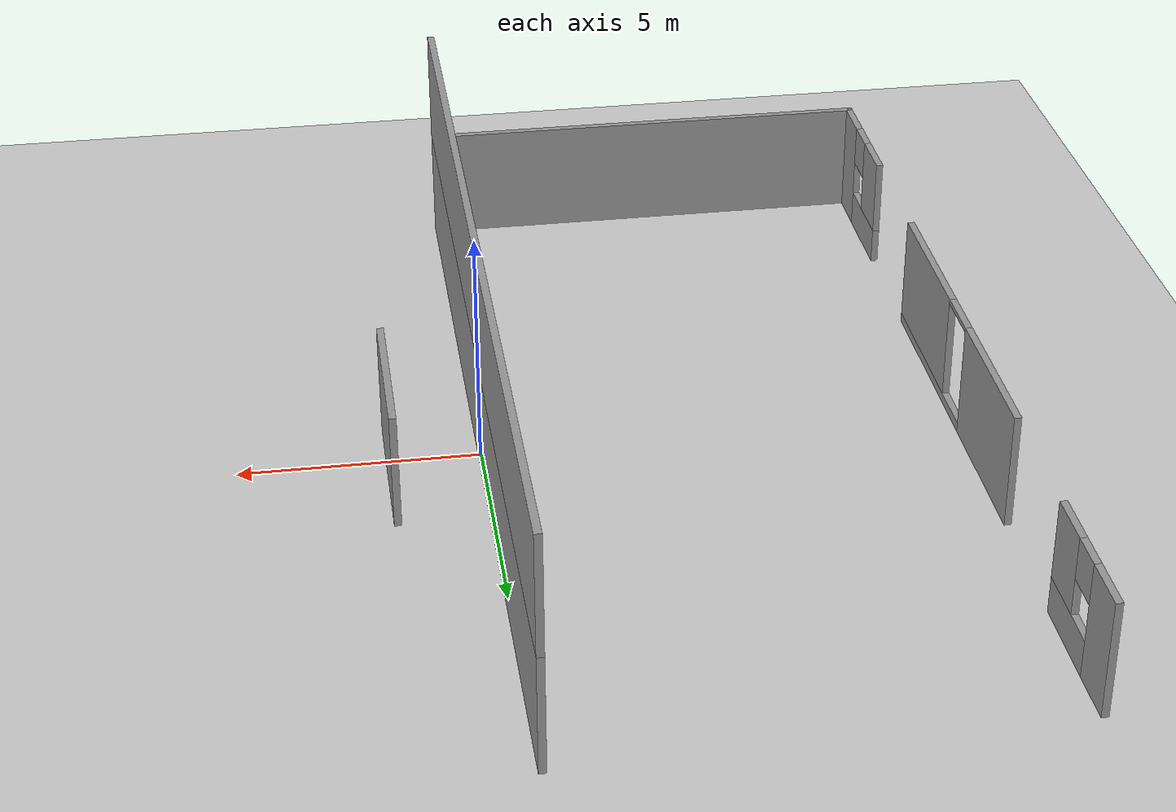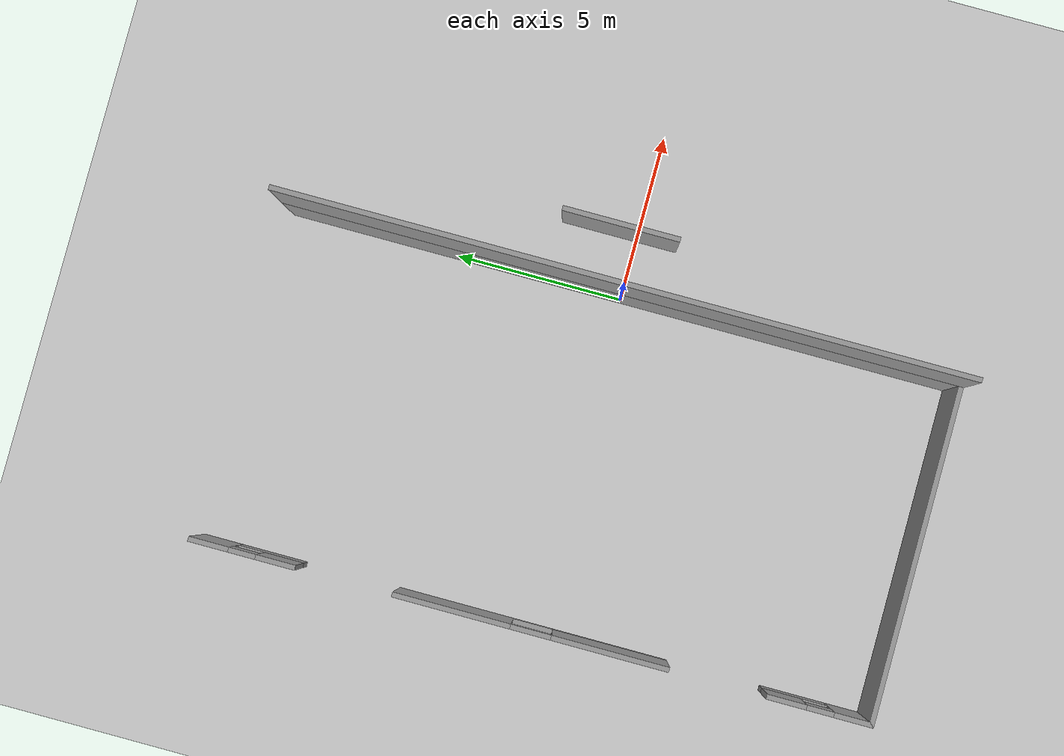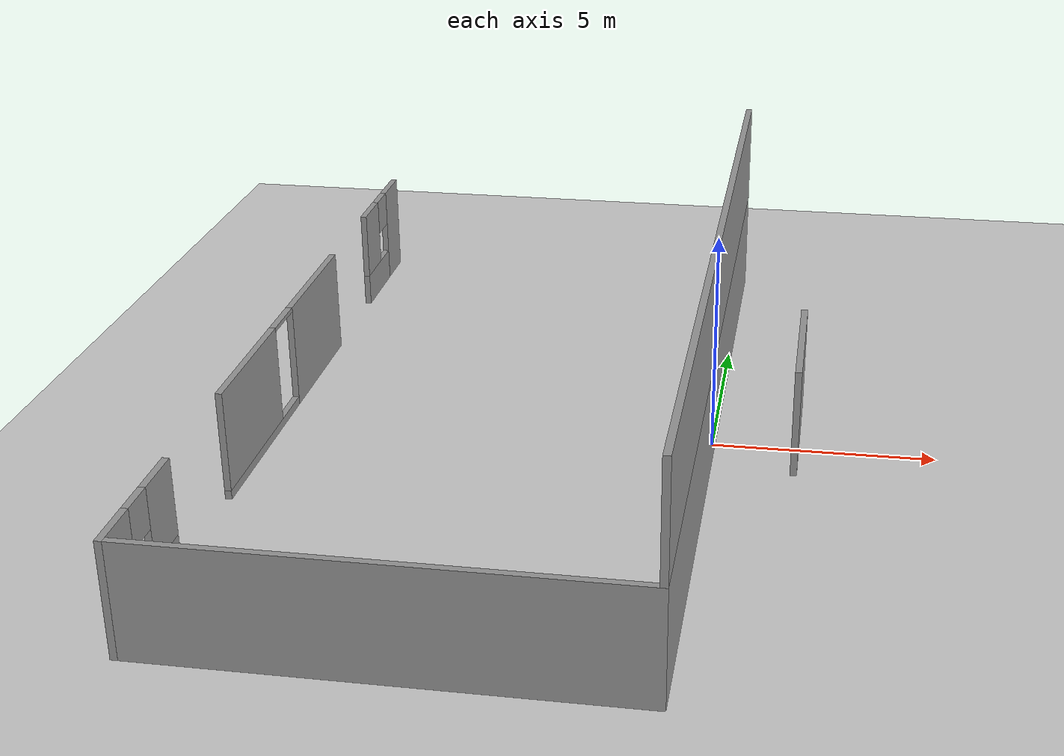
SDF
<sdf version="1.7">
 <world name="me5413_obstacle_world">
  <model name="ground_plane">
   <static>1</static>
   <link name="link">
    <collision name="collision">
     <geometry><plane><normal>0 0 1</normal><size>100 100</size></plane></geometry>
     <surface>
      <contact><collide_bitmask>65535</collide_bitmask></contact>
      <friction><ode><mu>100</mu><mu2>50</mu2></ode></friction>
     </surface>
    </collision>
    <visual name="visual">
     <cast_shadows>0</cast_shadows>
     <geometry><plane><normal>0 0 1</normal><size>100 100</size></plane></geometry>
     <material>
      <script><uri>file://media/materials/scripts/gazebo.material</uri><name>Gazebo/Grey</name></script>
     </material>
    </visual>
   </link>
  </model>
  <model name="smart_house_3_0">
   <link name="Wall_14">
    <pose>2.48447 1.48447 0 0 -0 1.5708</pose>
    <inertial>
     <inertia><ixx>1</ixx><ixy>0</ixy><ixz>0</ixz><iyy>1</iyy><iyz>0</iyz><izz>1</izz></inertia>
     <mass>1</mass>
    </inertial>
    <visual name="Wall_14_Visual">
     <pose>0 0 1.25 0 -0 0</pose>
     <geometry><box><size>20.15 0.15 2.5</size></box></geometry>
     <material>
      <script><uri>file://media/materials/scripts/gazebo.material</uri><name>Gazebo/Grey</name></script>
      <ambient>1 1 1 1</ambient>
      <shader type="pixel"/>
     </material>
     <meta><layer>0</layer></meta>
    </visual>
    <collision name="Wall_14_Collision">
     <pose>0 0 1.25 0 -0 0</pose>
     <geometry><box><size>20.15 0.15 2.5</size></box></geometry>
     <surface>
      <friction>
       <ode><mu>1</mu><mu2>1</mu2><fdir1>0 0 0</fdir1><slip1>0</slip1><slip2>0</slip2></ode>
       <torsional>
        <coefficient>1</coefficient>
        <patch_radius>0</patch_radius>
        <surface_radius>0</surface_radius>
        <use_patch_radius>1</use_patch_radius>
        <ode><slip>0</slip></ode>
       </torsional>
      </friction>
      <bounce><restitution_coefficient>0</restitution_coefficient><threshold>1e+06</threshold></bounce>
      <contact>
       <collide_without_contact>0</collide_without_contact>
       <collide_without_contact_bitmask>1</collide_without_contact_bitmask>
       <collide_bitmask>1</collide_bitmask>
       <ode>
        <soft_cfm>0</soft_cfm>
        <soft_erp>0.2</soft_erp>
        <kp>1e+13</kp>
        <kd>1</kd>
        <max_vel>0.01</max_vel>
        <min_depth>0</min_depth>
       </ode>
       <bullet>
        <split_impulse>1</split_impulse>
        <split_impulse_penetration_threshold>-0.01</split_impulse_penetration_threshold>
        <soft_cfm>0</soft_cfm>
        <soft_erp>0.2</soft_erp>
        <kp>1e+13</kp>
        <kd>1</kd>
       </bullet>
      </contact>
     </surface>
    </collision>
   </link>
   <link name="Wall_234">
    <pose>2.48447 1.48447 2.5 0 -0 1.5708</pose>
    <inertial>
     <inertia><ixx>1</ixx><ixy>0</ixy><ixz>0</ixz><iyy>1</iyy><iyz>0</iyz><izz>1</izz></inertia>
     <mass>1</mass>
    </inertial>
    <visual name="Wall_234_Visual">
     <pose>0 0 1.25 0 -0 0</pose>
     <geometry><box><size>20.15 0.15 2.5</size></box></geometry>
     <material>
      <script><uri>file://media/materials/scripts/gazebo.material</uri><name>Gazebo/Grey</name></script>
      <ambient>1 1 1 1</ambient>
      <shader type="pixel"/>
     </material>
     <meta><layer>2</layer></meta>
    </visual>
    <collision name="Wall_234_Collision">
     <pose>0 0 1.25 0 -0 0</pose>
     <geometry><box><size>20.15 0.15 2.5</size></box></geometry>
     <surface>
      <friction>
       <ode><mu>1</mu><mu2>1</mu2><fdir1>0 0 0</fdir1><slip1>0</slip1><slip2>0</slip2></ode>
       <torsional>
        <coefficient>1</coefficient>
        <patch_radius>0</patch_radius>
        <surface_radius>0</surface_radius>
        <use_patch_radius>1</use_patch_radius>
        <ode><slip>0</slip></ode>
       </torsional>
      </friction>
      <bounce><restitution_coefficient>0</restitution_coefficient><threshold>1e+06</threshold></bounce>
      <contact>
       <collide_without_contact>0</collide_without_contact>
       <collide_without_contact_bitmask>1</collide_without_contact_bitmask>
       <collide_bitmask>1</collide_bitmask>
       <ode>
        <soft_cfm>0</soft_cfm>
        <soft_erp>0.2</soft_erp>
        <kp>1e+13</kp>
        <kd>1</kd>
        <max_vel>0.01</max_vel>
        <min_depth>0</min_depth>
       </ode>
       <bullet>
        <split_impulse>1</split_impulse>
        <split_impulse_penetration_threshold>-0.01</split_impulse_penetration_threshold>
        <soft_cfm>0</soft_cfm>
        <soft_erp>0.2</soft_erp>
        <kp>1e+13</kp>
        <kd>1</kd>
       </bullet>
      </contact>
     </surface>
    </collision>
   </link>
   <link name="Wall_42">
    <pose>-2.51553 -8.51553 0 0 -0 3.14159</pose>
    <inertial>
     <inertia><ixx>1</ixx><ixy>0</ixy><ixz>0</ixz><iyy>1</iyy><iyz>0</iyz><izz>1</izz></inertia>
     <mass>1</mass>
    </inertial>
    <visual name="Wall_42_Visual">
     <pose>0 0 1.25 0 -0 0</pose>
     <geometry><box><size>10.15 0.15 2.5</size></box></geometry>
     <material>
      <script><uri>file://media/materials/scripts/gazebo.material</uri><name>Gazebo/Grey</name></script>
      <ambient>1 1 1 1</ambient>
      <shader type="pixel"/>
     </material>
     <meta><layer>0</layer></meta>
    </visual>
    <collision name="Wall_42_Collision">
     <pose>0 0 1.25 0 -0 0</pose>
     <geometry><box><size>10.15 0.15 2.5</size></box></geometry>
     <surface>
      <friction>
       <ode><mu>1</mu><mu2>1</mu2><fdir1>0 0 0</fdir1><slip1>0</slip1><slip2>0</slip2></ode>
       <torsional>
        <coefficient>1</coefficient>
        <patch_radius>0</patch_radius>
        <surface_radius>0</surface_radius>
        <use_patch_radius>1</use_patch_radius>
        <ode><slip>0</slip></ode>
       </torsional>
      </friction>
      <bounce><restitution_coefficient>0</restitution_coefficient><threshold>1e+06</threshold></bounce>
      <contact>
       <collide_without_contact>0</collide_without_contact>
       <collide_without_contact_bitmask>1</collide_without_contact_bitmask>
       <collide_bitmask>1</collide_bitmask>
       <ode>
        <soft_cfm>0</soft_cfm>
        <soft_erp>0.2</soft_erp>
        <kp>1e+13</kp>
        <kd>1</kd>
        <max_vel>0.01</max_vel>
        <min_depth>0</min_depth>
       </ode>
       <bullet>
        <split_impulse>1</split_impulse>
        <split_impulse_penetration_threshold>-0.01</split_impulse_penetration_threshold>
        <soft_cfm>0</soft_cfm>
        <soft_erp>0.2</soft_erp>
        <kp>1e+13</kp>
        <kd>1</kd>
       </bullet>
      </contact>
     </surface>
    </collision>
   </link>
   <link name="Wall_48">
    <pose>-7.51553 -7.01553 0 0 -0 1.5708</pose>
    <inertial>
     <inertia><ixx>1</ixx><ixy>0</ixy><ixz>0</ixz><iyy>1</iyy><iyz>0</iyz><izz>1</izz></inertia>
     <mass>1</mass>
    </inertial>
    <visual name="Wall_48_Visual_3">
     <pose>-0 0 2.05 0 -0 0</pose>
     <geometry><box><size>0.8 0.15 0.9</size></box></geometry>
     <material>
      <script><uri>file://media/materials/scripts/gazebo.material</uri><name>Gazebo/Grey</name></script>
      <ambient>1 1 1 1</ambient>
      <shader type="pixel"/>
     </material>
     <meta><layer>0</layer></meta>
    </visual>
    <visual name="Wall_48_Visual_0">
     <pose>-0.9875 0 1.25 0 -0 0</pose>
     <geometry><box><size>1.175 0.15 2.5</size></box></geometry>
     <material>
      <script><uri>file://media/materials/scripts/gazebo.material</uri><name>Gazebo/Grey</name></script>
      <ambient>1 1 1 1</ambient>
      <shader type="pixel"/>
     </material>
     <meta><layer>0</layer></meta>
    </visual>
    <visual name="Wall_48_Visual_2">
     <pose>0.9875 0 1.65 0 -0 0</pose>
     <geometry><box><size>1.175 0.15 1.7</size></box></geometry>
     <material>
      <script><uri>file://media/materials/scripts/gazebo.material</uri><name>Gazebo/Grey</name></script>
      <ambient>1 1 1 1</ambient>
      <shader type="pixel"/>
     </material>
     <meta><layer>0</layer></meta>
    </visual>
    <visual name="Wall_48_Visual_1">
     <pose>0.5875 0 0.4 0 -0 0</pose>
     <geometry><box><size>1.975 0.15 0.8</size></box></geometry>
     <material>
      <script><uri>file://media/materials/scripts/gazebo.material</uri><name>Gazebo/Grey</name></script>
      <ambient>1 1 1 1</ambient>
      <shader type="pixel"/>
     </material>
     <meta><layer>0</layer></meta>
    </visual>
    <collision name="Wall_48_Collision_0">
     <pose>-0.9875 0 1.25 0 -0 0</pose>
     <geometry><box><size>1.175 0.15 2.5</size></box></geometry>
     <surface>
      <friction>
       <ode><mu>1</mu><mu2>1</mu2><fdir1>0 0 0</fdir1><slip1>0</slip1><slip2>0</slip2></ode>
       <torsional>
        <coefficient>1</coefficient>
        <patch_radius>0</patch_radius>
        <surface_radius>0</surface_radius>
        <use_patch_radius>1</use_patch_radius>
        <ode><slip>0</slip></ode>
       </torsional>
      </friction>
      <bounce><restitution_coefficient>0</restitution_coefficient><threshold>1e+06</threshold></bounce>
      <contact>
       <collide_without_contact>0</collide_without_contact>
       <collide_without_contact_bitmask>1</collide_without_contact_bitmask>
       <collide_bitmask>1</collide_bitmask>
       <ode>
        <soft_cfm>0</soft_cfm>
        <soft_erp>0.2</soft_erp>
        <kp>1e+13</kp>
        <kd>1</kd>
        <max_vel>0.01</max_vel>
        <min_depth>0</min_depth>
       </ode>
       <bullet>
        <split_impulse>1</split_impulse>
        <split_impulse_penetration_threshold>-0.01</split_impulse_penetration_threshold>
        <soft_cfm>0</soft_cfm>
        <soft_erp>0.2</soft_erp>
        <kp>1e+13</kp>
        <kd>1</kd>
       </bullet>
      </contact>
     </surface>
    </collision>
    <collision name="Wall_48_Collision_3">
     <pose>0 0 2.05 0 -0 0</pose>
     <geometry><box><size>0.8 0.15 0.9</size></box></geometry>
     <surface>
      <friction>
       <ode><mu>1</mu><mu2>1</mu2><fdir1>0 0 0</fdir1><slip1>0</slip1><slip2>0</slip2></ode>
       <torsional>
        <coefficient>1</coefficient>
        <patch_radius>0</patch_radius>
        <surface_radius>0</surface_radius>
        <use_patch_radius>1</use_patch_radius>
        <ode><slip>0</slip></ode>
       </torsional>
      </friction>
      <bounce><restitution_coefficient>0</restitution_coefficient><threshold>1e+06</threshold></bounce>
      <contact>
       <collide_without_contact>0</collide_without_contact>
       <collide_without_contact_bitmask>1</collide_without_contact_bitmask>
       <collide_bitmask>1</collide_bitmask>
       <ode>
        <soft_cfm>0</soft_cfm>
        <soft_erp>0.2</soft_erp>
        <kp>1e+13</kp>
        <kd>1</kd>
        <max_vel>0.01</max_vel>
        <min_depth>0</min_depth>
       </ode>
       <bullet>
        <split_impulse>1</split_impulse>
        <split_impulse_penetration_threshold>-0.01</split_impulse_penetration_threshold>
        <soft_cfm>0</soft_cfm>
        <soft_erp>0.2</soft_erp>
        <kp>1e+13</kp>
        <kd>1</kd>
       </bullet>
      </contact>
     </surface>
    </collision>
    <collision name="Wall_48_Collision_2">
     <pose>0.9875 0 1.65 0 -0 0</pose>
     <geometry><box><size>1.175 0.15 1.7</size></box></geometry>
     <surface>
      <friction>
       <ode><mu>1</mu><mu2>1</mu2><fdir1>0 0 0</fdir1><slip1>0</slip1><slip2>0</slip2></ode>
       <torsional>
        <coefficient>1</coefficient>
        <patch_radius>0</patch_radius>
        <surface_radius>0</surface_radius>
        <use_patch_radius>1</use_patch_radius>
        <ode><slip>0</slip></ode>
       </torsional>
      </friction>
      <bounce><restitution_coefficient>0</restitution_coefficient><threshold>1e+06</threshold></bounce>
      <contact>
       <collide_without_contact>0</collide_without_contact>
       <collide_without_contact_bitmask>1</collide_without_contact_bitmask>
       <collide_bitmask>1</collide_bitmask>
       <ode>
        <soft_cfm>0</soft_cfm>
        <soft_erp>0.2</soft_erp>
        <kp>1e+13</kp>
        <kd>1</kd>
        <max_vel>0.01</max_vel>
        <min_depth>0</min_depth>
       </ode>
       <bullet>
        <split_impulse>1</split_impulse>
        <split_impulse_penetration_threshold>-0.01</split_impulse_penetration_threshold>
        <soft_cfm>0</soft_cfm>
        <soft_erp>0.2</soft_erp>
        <kp>1e+13</kp>
        <kd>1</kd>
       </bullet>
      </contact>
     </surface>
    </collision>
    <collision name="Wall_48_Collision_1">
     <pose>0.5875 0 0.4 0 -0 0</pose>
     <geometry><box><size>1.975 0.15 0.8</size></box></geometry>
     <surface>
      <friction>
       <ode><mu>1</mu><mu2>1</mu2><fdir1>0 0 0</fdir1><slip1>0</slip1><slip2>0</slip2></ode>
       <torsional>
        <coefficient>1</coefficient>
        <patch_radius>0</patch_radius>
        <surface_radius>0</surface_radius>
        <use_patch_radius>1</use_patch_radius>
        <ode><slip>0</slip></ode>
       </torsional>
      </friction>
      <bounce><restitution_coefficient>0</restitution_coefficient><threshold>1e+06</threshold></bounce>
      <contact>
       <collide_without_contact>0</collide_without_contact>
       <collide_without_contact_bitmask>1</collide_without_contact_bitmask>
       <collide_bitmask>1</collide_bitmask>
       <ode>
        <soft_cfm>0</soft_cfm>
        <soft_erp>0.2</soft_erp>
        <kp>1e+13</kp>
        <kd>1</kd>
        <max_vel>0.01</max_vel>
        <min_depth>0</min_depth>
       </ode>
       <bullet>
        <split_impulse>1</split_impulse>
        <split_impulse_penetration_threshold>-0.01</split_impulse_penetration_threshold>
        <soft_cfm>0</soft_cfm>
        <soft_erp>0.2</soft_erp>
        <kp>1e+13</kp>
        <kd>1</kd>
       </bullet>
      </contact>
     </surface>
    </collision>
   </link>
   <link name="Wall_50">
    <pose>-7.51553 9.98447 0 0 0 -1.5708</pose>
    <inertial>
     <inertia><ixx>1</ixx><ixy>0</ixy><ixz>0</ixz><iyy>1</iyy><iyz>0</iyz><izz>1</izz></inertia>
     <mass>1</mass>
    </inertial>
    <visual name="Wall_50_Visual_3">
     <pose>-0 0 2.05 0 -0 0</pose>
     <geometry><box><size>0.8 0.15 0.9</size></box></geometry>
     <material>
      <script><uri>file://media/materials/scripts/gazebo.material</uri><name>Gazebo/Grey</name></script>
      <ambient>1 1 1 1</ambient>
      <shader type="pixel"/>
     </material>
     <meta><layer>0</layer></meta>
    </visual>
    <visual name="Wall_50_Visual_2">
     <pose>0.9875 0 1.65 0 -0 0</pose>
     <geometry><box><size>1.175 0.15 1.7</size></box></geometry>
     <material>
      <script><uri>file://media/materials/scripts/gazebo.material</uri><name>Gazebo/Grey</name></script>
      <ambient>1 1 1 1</ambient>
      <shader type="pixel"/>
     </material>
     <meta><layer>0</layer></meta>
    </visual>
    <visual name="Wall_50_Visual_1">
     <pose>0.5875 0 0.4 0 -0 0</pose>
     <geometry><box><size>1.975 0.15 0.8</size></box></geometry>
     <material>
      <script><uri>file://media/materials/scripts/gazebo.material</uri><name>Gazebo/Grey</name></script>
      <ambient>1 1 1 1</ambient>
      <shader type="pixel"/>
     </material>
     <meta><layer>0</layer></meta>
    </visual>
    <visual name="Wall_50_Visual_0">
     <pose>-0.9875 0 1.25 0 -0 0</pose>
     <geometry><box><size>1.175 0.15 2.5</size></box></geometry>
     <material>
      <script><uri>file://media/materials/scripts/gazebo.material</uri><name>Gazebo/Grey</name></script>
      <ambient>1 1 1 1</ambient>
      <shader type="pixel"/>
     </material>
     <meta><layer>0</layer></meta>
    </visual>
    <collision name="Wall_50_Collision_2">
     <pose>0.9875 0 1.65 0 -0 0</pose>
     <geometry><box><size>1.175 0.15 1.7</size></box></geometry>
     <surface>
      <friction>
       <ode><mu>1</mu><mu2>1</mu2><fdir1>0 0 0</fdir1><slip1>0</slip1><slip2>0</slip2></ode>
       <torsional>
        <coefficient>1</coefficient>
        <patch_radius>0</patch_radius>
        <surface_radius>0</surface_radius>
        <use_patch_radius>1</use_patch_radius>
        <ode><slip>0</slip></ode>
       </torsional>
      </friction>
      <bounce><restitution_coefficient>0</restitution_coefficient><threshold>1e+06</threshold></bounce>
      <contact>
       <collide_without_contact>0</collide_without_contact>
       <collide_without_contact_bitmask>1</collide_without_contact_bitmask>
       <collide_bitmask>1</collide_bitmask>
       <ode>
        <soft_cfm>0</soft_cfm>
        <soft_erp>0.2</soft_erp>
        <kp>1e+13</kp>
        <kd>1</kd>
        <max_vel>0.01</max_vel>
        <min_depth>0</min_depth>
       </ode>
       <bullet>
        <split_impulse>1</split_impulse>
        <split_impulse_penetration_threshold>-0.01</split_impulse_penetration_threshold>
        <soft_cfm>0</soft_cfm>
        <soft_erp>0.2</soft_erp>
        <kp>1e+13</kp>
        <kd>1</kd>
       </bullet>
      </contact>
     </surface>
    </collision>
    <collision name="Wall_50_Collision_3">
     <pose>0 0 2.05 0 -0 0</pose>
     <geometry><box><size>0.8 0.15 0.9</size></box></geometry>
     <surface>
      <friction>
       <ode><mu>1</mu><mu2>1</mu2><fdir1>0 0 0</fdir1><slip1>0</slip1><slip2>0</slip2></ode>
       <torsional>
        <coefficient>1</coefficient>
        <patch_radius>0</patch_radius>
        <surface_radius>0</surface_radius>
        <use_patch_radius>1</use_patch_radius>
        <ode><slip>0</slip></ode>
       </torsional>
      </friction>
      <bounce><restitution_coefficient>0</restitution_coefficient><threshold>1e+06</threshold></bounce>
      <contact>
       <collide_without_contact>0</collide_without_contact>
       <collide_without_contact_bitmask>1</collide_without_contact_bitmask>
       <collide_bitmask>1</collide_bitmask>
       <ode>
        <soft_cfm>0</soft_cfm>
        <soft_erp>0.2</soft_erp>
        <kp>1e+13</kp>
        <kd>1</kd>
        <max_vel>0.01</max_vel>
        <min_depth>0</min_depth>
       </ode>
       <bullet>
        <split_impulse>1</split_impulse>
        <split_impulse_penetration_threshold>-0.01</split_impulse_penetration_threshold>
        <soft_cfm>0</soft_cfm>
        <soft_erp>0.2</soft_erp>
        <kp>1e+13</kp>
        <kd>1</kd>
       </bullet>
      </contact>
     </surface>
    </collision>
    <collision name="Wall_50_Collision_0">
     <pose>-0.9875 0 1.25 0 -0 0</pose>
     <geometry><box><size>1.175 0.15 2.5</size></box></geometry>
     <surface>
      <friction>
       <ode><mu>1</mu><mu2>1</mu2><fdir1>0 0 0</fdir1><slip1>0</slip1><slip2>0</slip2></ode>
       <torsional>
        <coefficient>1</coefficient>
        <patch_radius>0</patch_radius>
        <surface_radius>0</surface_radius>
        <use_patch_radius>1</use_patch_radius>
        <ode><slip>0</slip></ode>
       </torsional>
      </friction>
      <bounce><restitution_coefficient>0</restitution_coefficient><threshold>1e+06</threshold></bounce>
      <contact>
       <collide_without_contact>0</collide_without_contact>
       <collide_without_contact_bitmask>1</collide_without_contact_bitmask>
       <collide_bitmask>1</collide_bitmask>
       <ode>
        <soft_cfm>0</soft_cfm>
        <soft_erp>0.2</soft_erp>
        <kp>1e+13</kp>
        <kd>1</kd>
        <max_vel>0.01</max_vel>
        <min_depth>0</min_depth>
       </ode>
       <bullet>
        <split_impulse>1</split_impulse>
        <split_impulse_penetration_threshold>-0.01</split_impulse_penetration_threshold>
        <soft_cfm>0</soft_cfm>
        <soft_erp>0.2</soft_erp>
        <kp>1e+13</kp>
        <kd>1</kd>
       </bullet>
      </contact>
     </surface>
    </collision>
    <collision name="Wall_50_Collision_1">
     <pose>0.5875 0 0.4 0 -0 0</pose>
     <geometry><box><size>1.975 0.15 0.8</size></box></geometry>
     <surface>
      <friction>
       <ode><mu>1</mu><mu2>1</mu2><fdir1>0 0 0</fdir1><slip1>0</slip1><slip2>0</slip2></ode>
       <torsional>
        <coefficient>1</coefficient>
        <patch_radius>0</patch_radius>
        <surface_radius>0</surface_radius>
        <use_patch_radius>1</use_patch_radius>
        <ode><slip>0</slip></ode>
       </torsional>
      </friction>
      <bounce><restitution_coefficient>0</restitution_coefficient><threshold>1e+06</threshold></bounce>
      <contact>
       <collide_without_contact>0</collide_without_contact>
       <collide_without_contact_bitmask>1</collide_without_contact_bitmask>
       <collide_bitmask>1</collide_bitmask>
       <ode>
        <soft_cfm>0</soft_cfm>
        <soft_erp>0.2</soft_erp>
        <kp>1e+13</kp>
        <kd>1</kd>
        <max_vel>0.01</max_vel>
        <min_depth>0</min_depth>
       </ode>
       <bullet>
        <split_impulse>1</split_impulse>
        <split_impulse_penetration_threshold>-0.01</split_impulse_penetration_threshold>
        <soft_cfm>0</soft_cfm>
        <soft_erp>0.2</soft_erp>
        <kp>1e+13</kp>
        <kd>1</kd>
       </bullet>
      </contact>
     </surface>
    </collision>
   </link>
   <link name="Wall_52">
    <pose>-7.51553 1.48447 0 0 0 -1.5708</pose>
    <inertial>
     <inertia><ixx>1</ixx><ixy>0</ixy><ixz>0</ixz><iyy>1</iyy><iyz>0</iyz><izz>1</izz></inertia>
     <mass>1</mass>
    </inertial>
    <visual name="Wall_52_Visual_0">
     <pose>-2.3375 0 1.25 0 -0 0</pose>
     <geometry><box><size>3.475 0.15 2.5</size></box></geometry>
     <material>
      <script><uri>file://media/materials/scripts/gazebo.material</uri><name>Gazebo/Grey</name></script>
      <ambient>1 1 1 1</ambient>
      <shader type="pixel"/>
     </material>
     <meta><layer>0</layer></meta>
    </visual>
    <visual name="Wall_52_Visual_3">
     <pose>-0 0 2.45 0 -0 0</pose>
     <geometry><box><size>1.2 0.15 0.1</size></box></geometry>
     <material>
      <script><uri>file://media/materials/scripts/gazebo.material</uri><name>Gazebo/Grey</name></script>
      <ambient>1 1 1 1</ambient>
      <shader type="pixel"/>
     </material>
     <meta><layer>0</layer></meta>
    </visual>
    <visual name="Wall_52_Visual_2">
     <pose>2.3375 0 1.35 0 -0 0</pose>
     <geometry><box><size>3.475 0.15 2.3</size></box></geometry>
     <material>
      <script><uri>file://media/materials/scripts/gazebo.material</uri><name>Gazebo/Grey</name></script>
      <ambient>1 1 1 1</ambient>
      <shader type="pixel"/>
     </material>
     <meta><layer>0</layer></meta>
    </visual>
    <visual name="Wall_52_Visual_1">
     <pose>1.7375 0 0.1 0 -0 0</pose>
     <geometry><box><size>4.675 0.15 0.2</size></box></geometry>
     <material>
      <script><uri>file://media/materials/scripts/gazebo.material</uri><name>Gazebo/Grey</name></script>
      <ambient>1 1 1 1</ambient>
      <shader type="pixel"/>
     </material>
     <meta><layer>0</layer></meta>
    </visual>
    <collision name="Wall_52_Collision_1">
     <pose>1.7375 0 0.1 0 -0 0</pose>
     <geometry><box><size>4.675 0.15 0.2</size></box></geometry>
     <surface>
      <friction>
       <ode><mu>1</mu><mu2>1</mu2><fdir1>0 0 0</fdir1><slip1>0</slip1><slip2>0</slip2></ode>
       <torsional>
        <coefficient>1</coefficient>
        <patch_radius>0</patch_radius>
        <surface_radius>0</surface_radius>
        <use_patch_radius>1</use_patch_radius>
        <ode><slip>0</slip></ode>
       </torsional>
      </friction>
      <bounce><restitution_coefficient>0</restitution_coefficient><threshold>1e+06</threshold></bounce>
      <contact>
       <collide_without_contact>0</collide_without_contact>
       <collide_without_contact_bitmask>1</collide_without_contact_bitmask>
       <collide_bitmask>1</collide_bitmask>
       <ode>
        <soft_cfm>0</soft_cfm>
        <soft_erp>0.2</soft_erp>
        <kp>1e+13</kp>
        <kd>1</kd>
        <max_vel>0.01</max_vel>
        <min_depth>0</min_depth>
       </ode>
       <bullet>
        <split_impulse>1</split_impulse>
        <split_impulse_penetration_threshold>-0.01</split_impulse_penetration_threshold>
        <soft_cfm>0</soft_cfm>
        <soft_erp>0.2</soft_erp>
        <kp>1e+13</kp>
        <kd>1</kd>
       </bullet>
      </contact>
     </surface>
    </collision>
    <collision name="Wall_52_Collision_2">
     <pose>2.3375 0 1.35 0 -0 0</pose>
     <geometry><box><size>3.475 0.15 2.3</size></box></geometry>
     <surface>
      <friction>
       <ode><mu>1</mu><mu2>1</mu2><fdir1>0 0 0</fdir1><slip1>0</slip1><slip2>0</slip2></ode>
       <torsional>
        <coefficient>1</coefficient>
        <patch_radius>0</patch_radius>
        <surface_radius>0</surface_radius>
        <use_patch_radius>1</use_patch_radius>
        <ode><slip>0</slip></ode>
       </torsional>
      </friction>
      <bounce><restitution_coefficient>0</restitution_coefficient><threshold>1e+06</threshold></bounce>
      <contact>
       <collide_without_contact>0</collide_without_contact>
       <collide_without_contact_bitmask>1</collide_without_contact_bitmask>
       <collide_bitmask>1</collide_bitmask>
       <ode>
        <soft_cfm>0</soft_cfm>
        <soft_erp>0.2</soft_erp>
        <kp>1e+13</kp>
        <kd>1</kd>
        <max_vel>0.01</max_vel>
        <min_depth>0</min_depth>
       </ode>
       <bullet>
        <split_impulse>1</split_impulse>
        <split_impulse_penetration_threshold>-0.01</split_impulse_penetration_threshold>
        <soft_cfm>0</soft_cfm>
        <soft_erp>0.2</soft_erp>
        <kp>1e+13</kp>
        <kd>1</kd>
       </bullet>
      </contact>
     </surface>
    </collision>
    <collision name="Wall_52_Collision_3">
     <pose>0 0 2.45 0 -0 0</pose>
     <geometry><box><size>1.2 0.15 0.1</size></box></geometry>
     <surface>
      <friction>
       <ode><mu>1</mu><mu2>1</mu2><fdir1>0 0 0</fdir1><slip1>0</slip1><slip2>0</slip2></ode>
       <torsional>
        <coefficient>1</coefficient>
        <patch_radius>0</patch_radius>
        <surface_radius>0</surface_radius>
        <use_patch_radius>1</use_patch_radius>
        <ode><slip>0</slip></ode>
       </torsional>
      </friction>
      <bounce><restitution_coefficient>0</restitution_coefficient><threshold>1e+06</threshold></bounce>
      <contact>
       <collide_without_contact>0</collide_without_contact>
       <collide_without_contact_bitmask>1</collide_without_contact_bitmask>
       <collide_bitmask>1</collide_bitmask>
       <ode>
        <soft_cfm>0</soft_cfm>
        <soft_erp>0.2</soft_erp>
        <kp>1e+13</kp>
        <kd>1</kd>
        <max_vel>0.01</max_vel>
        <min_depth>0</min_depth>
       </ode>
       <bullet>
        <split_impulse>1</split_impulse>
        <split_impulse_penetration_threshold>-0.01</split_impulse_penetration_threshold>
        <soft_cfm>0</soft_cfm>
        <soft_erp>0.2</soft_erp>
        <kp>1e+13</kp>
        <kd>1</kd>
       </bullet>
      </contact>
     </surface>
    </collision>
    <collision name="Wall_52_Collision_0">
     <pose>-2.3375 0 1.25 0 -0 0</pose>
     <geometry><box><size>3.475 0.15 2.5</size></box></geometry>
     <surface>
      <friction>
       <ode><mu>1</mu><mu2>1</mu2><fdir1>0 0 0</fdir1><slip1>0</slip1><slip2>0</slip2></ode>
       <torsional>
        <coefficient>1</coefficient>
        <patch_radius>0</patch_radius>
        <surface_radius>0</surface_radius>
        <use_patch_radius>1</use_patch_radius>
        <ode><slip>0</slip></ode>
       </torsional>
      </friction>
      <bounce><restitution_coefficient>0</restitution_coefficient><threshold>1e+06</threshold></bounce>
      <contact>
       <collide_without_contact>0</collide_without_contact>
       <collide_without_contact_bitmask>1</collide_without_contact_bitmask>
       <collide_bitmask>1</collide_bitmask>
       <ode>
        <soft_cfm>0</soft_cfm>
        <soft_erp>0.2</soft_erp>
        <kp>1e+13</kp>
        <kd>1</kd>
        <max_vel>0.01</max_vel>
        <min_depth>0</min_depth>
       </ode>
       <bullet>
        <split_impulse>1</split_impulse>
        <split_impulse_penetration_threshold>-0.01</split_impulse_penetration_threshold>
        <soft_cfm>0</soft_cfm>
        <soft_erp>0.2</soft_erp>
        <kp>1e+13</kp>
        <kd>1</kd>
       </bullet>
      </contact>
     </surface>
    </collision>
   </link>
   <link name="Wall_70">
    <pose>4.37995 2.03658 0 0 0 -1.5708</pose>
    <inertial>
     <inertia><ixx>1</ixx><ixy>0</ixy><ixz>0</ixz><iyy>1</iyy><iyz>0</iyz><izz>1</izz></inertia>
     <mass>1</mass>
    </inertial>
    <visual name="Wall_70_Visual">
     <pose>0 0 1.25 0 -0 0</pose>
     <geometry><box><size>3.5 0.15 2.5</size></box></geometry>
     <material>
      <script><uri>file://media/materials/scripts/gazebo.material</uri><name>Gazebo/Grey</name></script>
      <ambient>1 1 1 1</ambient>
      <shader type="pixel"/>
     </material>
     <meta><layer>0</layer></meta>
    </visual>
    <collision name="Wall_70_Collision">
     <pose>0 0 1.25 0 -0 0</pose>
     <geometry><box><size>3.5 0.15 2.5</size></box></geometry>
     <surface>
      <friction>
       <ode><mu>1</mu><mu2>1</mu2><fdir1>0 0 0</fdir1><slip1>0</slip1><slip2>0</slip2></ode>
       <torsional>
        <coefficient>1</coefficient>
        <patch_radius>0</patch_radius>
        <surface_radius>0</surface_radius>
        <use_patch_radius>1</use_patch_radius>
        <ode><slip>0</slip></ode>
       </torsional>
      </friction>
      <bounce><restitution_coefficient>0</restitution_coefficient><threshold>1e+06</threshold></bounce>
      <contact>
       <collide_without_contact>0</collide_without_contact>
       <collide_without_contact_bitmask>1</collide_without_contact_bitmask>
       <collide_bitmask>1</collide_bitmask>
       <ode>
        <soft_cfm>0</soft_cfm>
        <soft_erp>0.2</soft_erp>
        <kp>1e+13</kp>
        <kd>1</kd>
        <max_vel>0.01</max_vel>
        <min_depth>0</min_depth>
       </ode>
       <bullet>
        <split_impulse>1</split_impulse>
        <split_impulse_penetration_threshold>-0.01</split_impulse_penetration_threshold>
        <soft_cfm>0</soft_cfm>
        <soft_erp>0.2</soft_erp>
        <kp>1e+13</kp>
        <kd>1</kd>
       </bullet>
      </contact>
     </surface>
    </collision>
   </link>
   <static>1</static>
   <pose>-2.5 -1.5 0 0 -0 0</pose>
  </model>
 </world>
</sdf>
